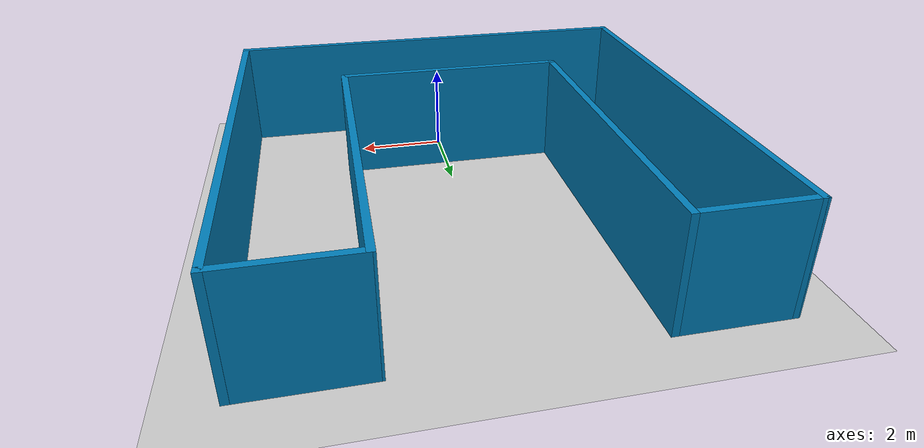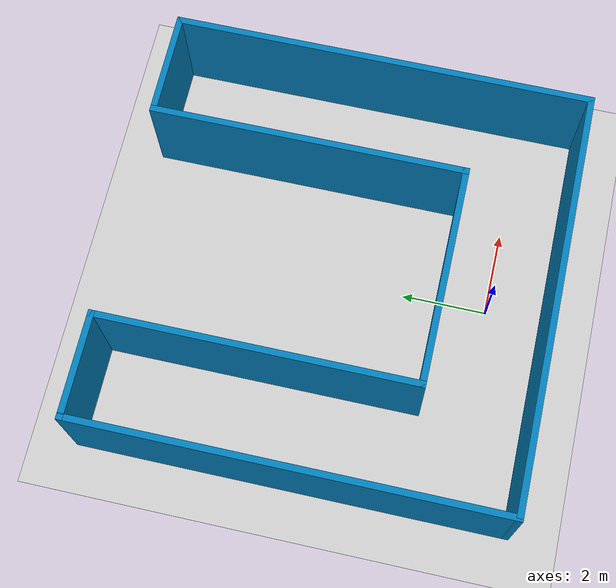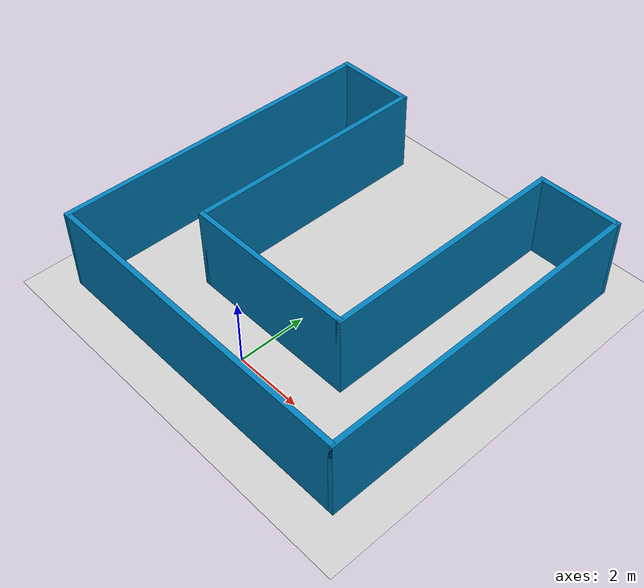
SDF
<sdf version="1.6">
 <world name="default">
  <light name="sun" type="directional">
   <pose>0 0 10 0 -0 0</pose>
   <diffuse>0.8 0.8 0.8 1</diffuse>
   <specular>0.2 0.2 0.2 1</specular>
   <attenuation>
    <range>1000</range>
    <constant>0.9</constant>
    <linear>0.01</linear>
    <quadratic>0.001</quadratic>
   </attenuation>
   <direction>-0.5 0.1 -0.9</direction>
  </light>
  <model name="ground_plane">
   <static>1</static>
   <link name="link">
    <collision name="collision">
     <geometry><plane><normal>0 0 1</normal><size>100 100</size></plane></geometry>
     <surface><friction><ode><mu>100</mu><mu2>50</mu2></ode></friction></surface>
    </collision>
    <visual name="visual">
     <cast_shadows>0</cast_shadows>
     <geometry><plane><normal>0 0 1</normal><size>100 100</size></plane></geometry>
     <material>
      <script><uri>file://media/materials/scripts/gazebo.material</uri><name>Gazebo/Grey</name></script>
     </material>
    </visual>
   </link>
  </model>
  <gravity>0 0 -9.8</gravity>
  <magnetic_field>6e-06 2.3e-05 -4.2e-05</magnetic_field>
  <atmosphere type="adiabatic"/>
  <physics name="default_physics" default="0" type="ode">
   <max_step_size>0.001</max_step_size>
   <real_time_factor>1</real_time_factor>
   <real_time_update_rate>1000</real_time_update_rate>
  </physics>
  <scene><ambient>0.4 0.4 0.4 1</ambient><background>0.7 0.7 0.7 1</background><shadows>1</shadows></scene>
  <spherical_coordinates>
   <surface_model>EARTH_WGS84</surface_model>
   <latitude_deg>0</latitude_deg>
   <longitude_deg>0</longitude_deg>
   <elevation>0</elevation>
   <heading_deg>0</heading_deg>
  </spherical_coordinates>
  <model name="simple_world">
   <pose>-0.130453 3.56102 0 0 -0 0</pose>
   <link name="Wall_0">
    <collision name="Wall_0_Collision">
     <geometry><box><size>10 0.15 2.5</size></box></geometry>
     <pose>0 0 1.25 0 -0 0</pose>
    </collision>
    <visual name="Wall_0_Visual">
     <pose>0 0 1.25 0 -0 0</pose>
     <geometry><box><size>10 0.15 2.5</size></box></geometry>
     <material>
      <script><uri>file://media/materials/scripts/gazebo.material</uri><name>Gazebo/Grey</name></script>
      <ambient>0 0.498039 0.729412 1</ambient>
     </material>
     <meta><layer>0</layer></meta>
    </visual>
    <pose>-4.925 0 0 0 0 -1.57078</pose>
   </link>
   <link name="Wall_14">
    <collision name="Wall_14_Collision">
     <geometry><box><size>2.5 0.15 2.5</size></box></geometry>
     <pose>0 0 1.25 0 -0 0</pose>
    </collision>
    <visual name="Wall_14_Visual">
     <pose>0 0 1.25 0 -0 0</pose>
     <geometry><box><size>2.5 0.15 2.5</size></box></geometry>
     <material>
      <script><uri>file://media/materials/scripts/gazebo.material</uri><name>Gazebo/Grey</name></script>
      <ambient>0 0.498039 0.729412 1</ambient>
     </material>
     <meta><layer>0</layer></meta>
    </visual>
    <pose>-3.75007 4.925 0 0 -0 0</pose>
   </link>
   <link name="Wall_16">
    <collision name="Wall_16_Collision">
     <geometry><box><size>7.5 0.15 2.5</size></box></geometry>
     <pose>0 0 1.25 0 -0 0</pose>
    </collision>
    <visual name="Wall_16_Visual">
     <pose>0 0 1.25 0 -0 0</pose>
     <geometry><box><size>7.5 0.15 2.5</size></box></geometry>
     <material>
      <script><uri>file://media/materials/scripts/gazebo.material</uri><name>Gazebo/Grey</name></script>
      <ambient>0 0.498039 0.729412 1</ambient>
     </material>
     <meta><layer>0</layer></meta>
    </visual>
    <pose>-2.57507 1.25 0 0 0 -1.5708</pose>
   </link>
   <link name="Wall_17">
    <collision name="Wall_17_Collision">
     <geometry><box><size>5.25 0.15 2.5</size></box></geometry>
     <pose>0 0 1.25 0 -0 0</pose>
    </collision>
    <visual name="Wall_17_Visual">
     <pose>0 0 1.25 0 -0 0</pose>
     <geometry><box><size>5.25 0.15 2.5</size></box></geometry>
     <material>
      <script><uri>file://media/materials/scripts/gazebo.material</uri><name>Gazebo/Grey</name></script>
      <ambient>0 0.498039 0.729412 1</ambient>
     </material>
     <meta><layer>0</layer></meta>
    </visual>
    <pose>-0.02507 -2.425 0 0 -0 0</pose>
   </link>
   <link name="Wall_21">
    <collision name="Wall_21_Collision">
     <geometry><box><size>7.5 0.15 2.5</size></box></geometry>
     <pose>0 0 1.25 0 -0 0</pose>
    </collision>
    <visual name="Wall_21_Visual">
     <pose>0 0 1.25 0 -0 0</pose>
     <geometry><box><size>7.5 0.15 2.5</size></box></geometry>
     <material>
      <script><uri>file://media/materials/scripts/gazebo.material</uri><name>Gazebo/Grey</name></script>
      <ambient>0 0.498039 0.729412 1</ambient>
     </material>
     <meta><layer>0</layer></meta>
    </visual>
    <pose>2.52493 1.25 0 0 -0 1.5708</pose>
   </link>
   <link name="Wall_6">
    <collision name="Wall_6_Collision">
     <geometry><box><size>10 0.15 2.5</size></box></geometry>
     <pose>0 0 1.25 0 -0 0</pose>
    </collision>
    <visual name="Wall_6_Visual">
     <pose>0 0 1.25 0 -0 0</pose>
     <geometry><box><size>10 0.15 2.5</size></box></geometry>
     <material>
      <script><uri>file://media/materials/scripts/gazebo.material</uri><name>Gazebo/Grey</name></script>
      <ambient>0 0.498039 0.729412 1</ambient>
     </material>
     <meta><layer>0</layer></meta>
    </visual>
    <pose>7.1e-05 -4.925 0 0 -0 0</pose>
   </link>
   <link name="Wall_7">
    <collision name="Wall_7_Collision">
     <geometry><box><size>10 0.15 2.5</size></box></geometry>
     <pose>0 0 1.25 0 -0 0</pose>
    </collision>
    <visual name="Wall_7_Visual">
     <pose>0 0 1.25 0 -0 0</pose>
     <geometry><box><size>10 0.15 2.5</size></box></geometry>
     <material>
      <script><uri>file://media/materials/scripts/gazebo.material</uri><name>Gazebo/Grey</name></script>
      <ambient>0 0.498039 0.729412 1</ambient>
     </material>
     <meta><layer>0</layer></meta>
    </visual>
    <pose>4.92507 0 0 0 -0 1.5708</pose>
   </link>
   <link name="Wall_8">
    <collision name="Wall_8_Collision">
     <geometry><box><size>2.5 0.15 2.5</size></box></geometry>
     <pose>0 0 1.25 0 -0 0</pose>
    </collision>
    <visual name="Wall_8_Visual">
     <pose>0 0 1.25 0 -0 0</pose>
     <geometry><box><size>2.5 0.15 2.5</size></box></geometry>
     <material>
      <script><uri>file://media/materials/scripts/gazebo.material</uri><name>Gazebo/Grey</name></script>
      <ambient>0 0.498039 0.729412 1</ambient>
     </material>
     <meta><layer>0</layer></meta>
    </visual>
    <pose>3.75007 4.925 0 0 -0 3.14159</pose>
   </link>
   <static>1</static>
  </model>
 </world>
</sdf>
